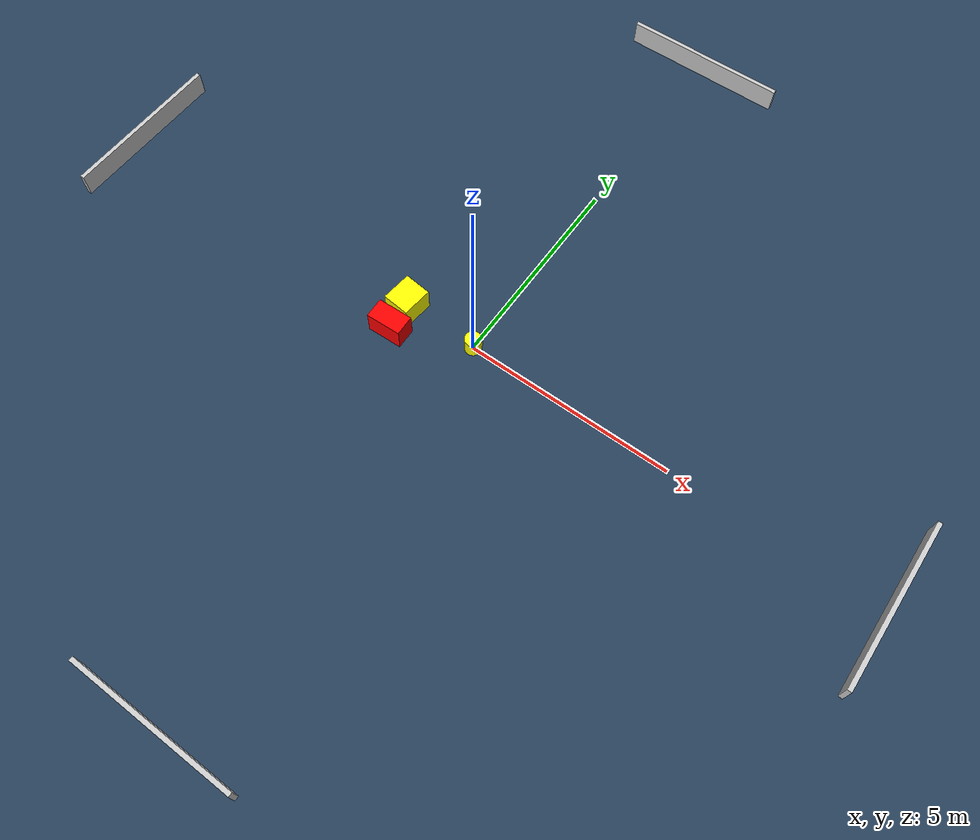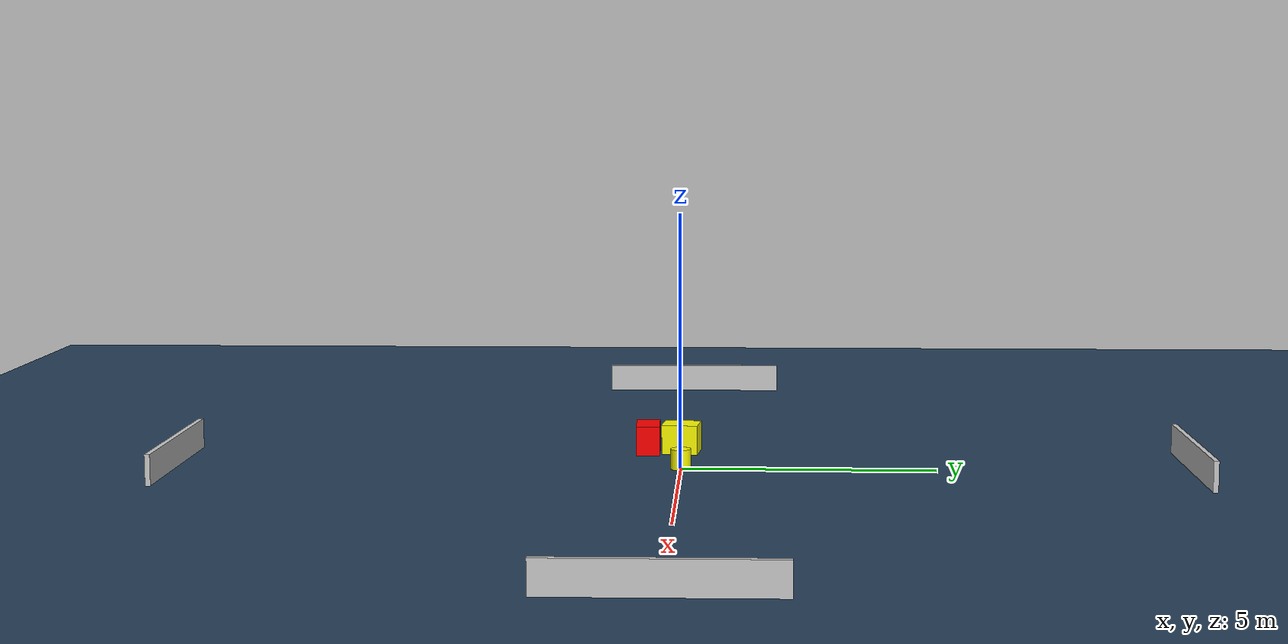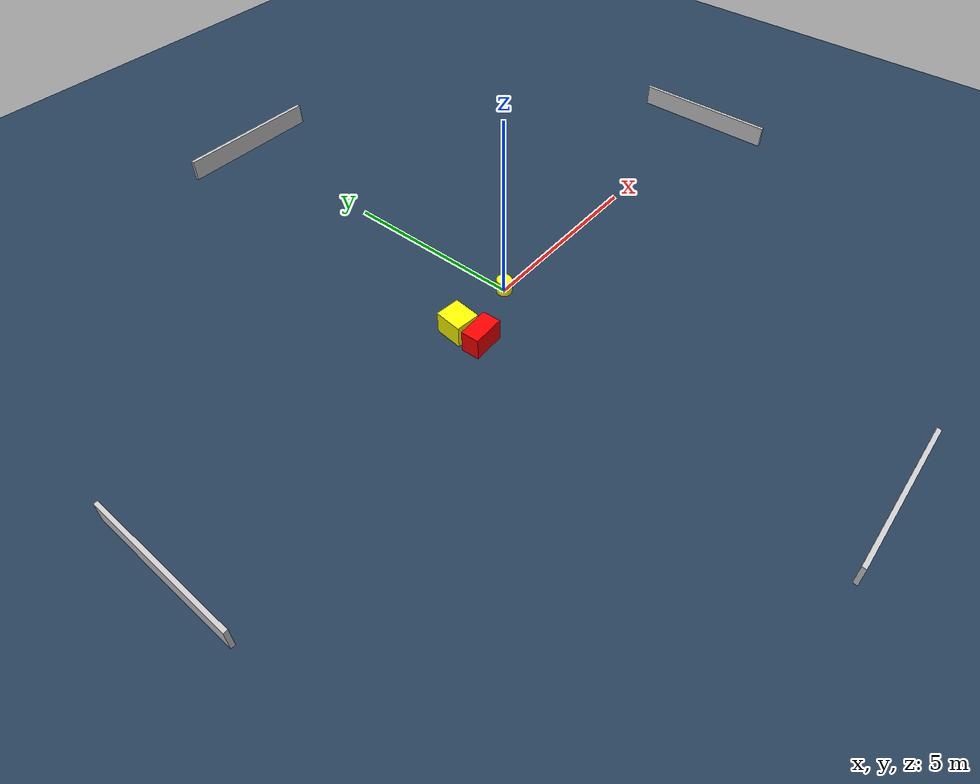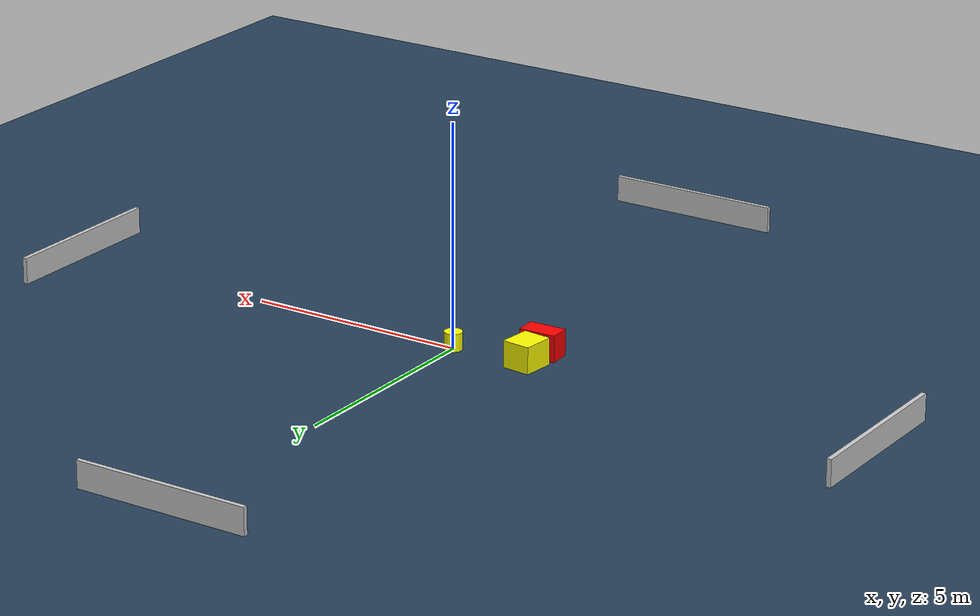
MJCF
<?xml version="1.0" ?>
<mujoco model="generated_environment">
  <option timestep="0.01" integrator="RK4" cone="elliptic"/>
  <default>
    <geom density="1"/>
  </default>
  <asset>
    <texture builtin="gradient" height="3072" name="skybox" rgb1="0.3 0.5 0.7" rgb2="0 0 0" type="skybox" width="512"/>
    <texture builtin="checker" height="300" name="groundplane" rgb1="0.2 0.3 0.4" rgb2="0.1 0.2 0.3" type="2d" width="300"/>
    <material name="groundplane" reflectance="0.2" texrepeat="5 5" texture="groundplane"/>
  </asset>
  <worldbody>
    <light dir="0 0 -1" directional="true" pos="0 0 1.5"/>
    <geom condim="3" friction="0.5 0.005 0.001" material="groundplane" name="floor" pos="0 0 0" size="0 0 0.05" type="plane"/>
    <body name="walls">
      <geom name="wall_1" condim="4" pos="-10.0 0.0 0.3" rgba="0.800000011920929 0.800000011920929 0.800000011920929 1.0" size="0.05 2.0 0.3" type="box"/>
      <geom name="wall_2" condim="4" pos="10.0 0.0 0.3" rgba="0.800000011920929 0.800000011920929 0.800000011920929 1.0" size="0.05 2.0 0.3" type="box"/>
      <geom name="wall_3" condim="4" pos="0.0 -10.0 0.3" rgba="0.800000011920929 0.800000011920929 0.800000011920929 1.0" size="2.0 0.05 0.3" type="box"/>
      <geom name="wall_4" condim="4" pos="0.0 10.0 0.3" rgba="0.800000011920929 0.800000011920929 0.800000011920929 1.0" size="2.0 0.05 0.3" type="box"/>
    </body>
    <body name="robot">
      <joint name="joint_x" type="slide" pos="0 0 0" axis="1 0 0"/>
      <joint name="joint_y" type="slide" pos="0 0 0" axis="0 1 0"/>
      <geom name="robot" type="cylinder" pos="0.0 0.0 0.2" size="0.2 0.2 0.0" mass="5.0" friction="1.0 0.005 0.0001" condim="4" rgba="1.0 1.0 0.0 1.0"/>
    </body>
    <body name="obstacle_1_movable">
      <geom name="obstacle_1_movable" condim="4" pos="-1.7984896549178622 -0.04299092369621077 0.3" euler="0 0 174.06019708684246" friction="0.0 0.005 0.001" rgba="1.0 1.0 0.0 1.0" size="0.3238956640501445 0.36549148715297475 0.3" type="box" mass="0.1"/>
      <joint type="free"/>
    </body>
    <body name="obstacle_2_static">
      <geom name="obstacle_2_static" condim="4" pos="-1.7588621258581942 -0.7220479945041809 0.3" euler="0 0 92.06562950306706" friction="0.0 0.005 0.001" rgba="1.0 0.0 0.0 1.0" size="0.23963446350756396 0.4190558260739556 0.3" type="box"/>
    </body>
  </worldbody>
  <actuator>
    <motor name="actuator_x" joint="joint_x" gear="1" ctrlrange="-1 1"/>
    <motor name="actuator_y" joint="joint_y" gear="1" ctrlrange="-1 1"/>
  </actuator>
</mujoco>
